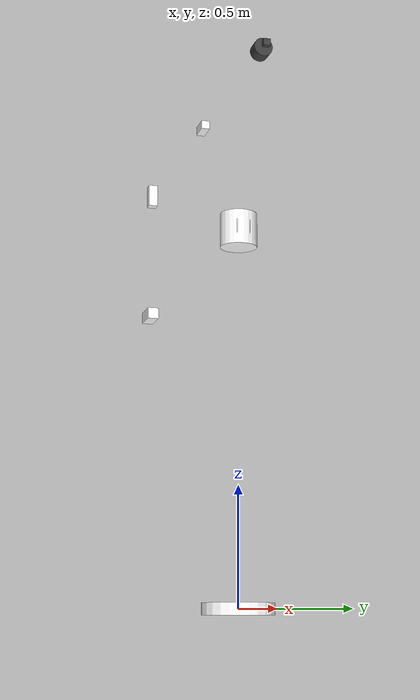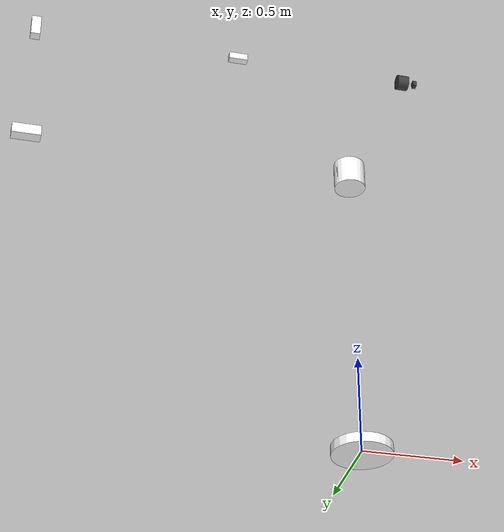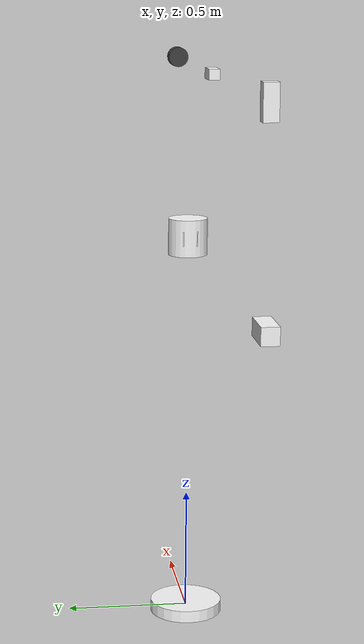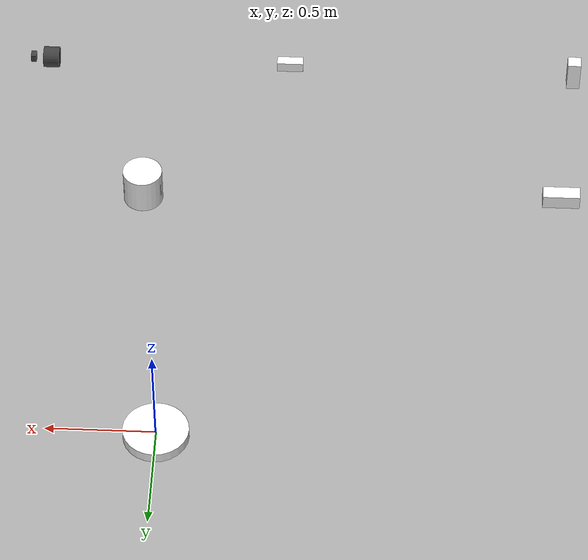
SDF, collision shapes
<sdf version='1.11'>
  <model name='my'>
    <link name='base_link'>
      <inertial>
        <pose>0.0 0.0 0.0 0.0 0.0 0.0</pose>
        <mass>2</mass>
        <inertia>
          <ixx>0.02</ixx>
          <ixy>0</ixy>
          <ixz>0</ixz>
          <iyy>0.02</iyy>
          <iyz>0</iyz>
          <izz>0.02</izz>
        </inertia>
      </inertial>
      <collision name='base_link_collision'>
        <pose>0.0 0.0 0.0 0.0 0.0 0.0</pose>
        <geometry>
          <cylinder>
            <length>0.050000000000000003</length>
            <radius>0.14999999999999999</radius>
          </cylinder>
        </geometry>
      </collision>
      <visual name='base_link_visual'>
        <pose>0.0 0.0 0.0 0.0 0.0 0.0</pose>
        <geometry>
          <mesh>
            <scale>0.01 0.01 0.01</scale>
            <uri>model://my_robot/meshes/base.STL</uri>
          </mesh>
        </geometry>
        <material>
          <diffuse>1 1 1 1</diffuse>
          <ambient>1 1 1 1</ambient>
        </material>
      </visual>
    </link>
    <!-- Fixed joint anchoring base_link to the world frame -->
    <joint name='base_world_fixed' type='fixed'>
      <parent>world</parent>
      <child>base_link</child>
    </joint>

    <joint name='base_to_link0' type='revolute'>
      <pose relative_to='base_link'>0.0 0.0 0.0 0.0 0.0 0.0</pose>
      <parent>base_link</parent>
      <child>link0</child>
      <axis>
        <xyz>0 0 1</xyz>
        <limit>
          <lower>-4</lower>
          <upper>0</upper>
          <effort>100</effort>
          <velocity>1</velocity>
        </limit>
        <dynamics>
          <spring_reference>0</spring_reference>
          <spring_stiffness>0</spring_stiffness>
        </dynamics>
      </axis>
    </joint>
    <link name='link0'>
      <pose relative_to='base_to_link0'>0.0 0.0 0.0 0.0 0.0 0.0</pose>
      <inertial>
        <pose>0.0 0.0 0.8 0.0 0.0 0.0</pose>
        <mass>0.80000000000000004</mass>
        <inertia>
          <ixx>0.0050000000000000001</ixx>
          <ixy>0</ixy>
          <ixz>0</ixz>
          <iyy>0.0050000000000000001</iyy>
          <iyz>0</iyz>
          <izz>0.0030000000000000001</izz>
        </inertia>
      </inertial>
      <collision name='link0_collision'>
        <pose>0.0 0.0 1.6 0.0 0.0 0.0</pose>
        <geometry>
          <cylinder>
            <length>0.14999999999999999</length>
            <radius>0.080000000000000002</radius>
          </cylinder>
        </geometry>
      </collision>
      <visual name='link0_visual'>
        <pose>0.0 0.0 1.6 0.0 0.0 3.1415</pose>
        <geometry>
          <mesh>
            <scale>0.01 0.01 0.01</scale>
            <uri>model://my_robot/meshes/joint1.STL</uri>
          </mesh>
        </geometry>
        <material>
          <diffuse>1 1 1 1</diffuse>
          <ambient>1 1 1 1</ambient>
        </material>
      </visual>
    </link>
    <joint name='link0_to_link1' type='revolute'>
      <pose relative_to='link0'>0.0 0.0 1.6 1.570892653589793 9.265358979305728e-05 -3.141592653589793</pose>
      <parent>link0</parent>
      <child>link1</child>
      <axis>
        <xyz>0 0 1</xyz>
        <limit>
          <lower>0</lower>
          <upper>3.1415000000000002</upper>
          <effort>100</effort>
          <velocity>1</velocity>
        </limit>
        <dynamics>
          <spring_reference>0</spring_reference>
          <spring_stiffness>0</spring_stiffness>
        </dynamics>
      </axis>
    </joint>
    <link name='link1'>
      <pose relative_to='link0_to_link1'>0.0 0.0 0.0 0.0 0.0 0.0</pose>
      <inertial>
        <pose>0.0 0.0 0.0 0.0 0.0 0.0</pose>
        <mass>0.69999999999999996</mass>
        <inertia>
          <ixx>0.0040000000000000001</ixx>
          <ixy>0</ixy>
          <ixz>0</ixz>
          <iyy>0.0040000000000000001</iyy>
          <iyz>0</iyz>
          <izz>0.002</izz>
        </inertia>
      </inertial>
      <collision name='link1_collision'>
        <pose>0.0 0.0 0.0 0.0 0.0 0.0</pose>
        <geometry>
          <box>
            <size>0.14999999999999999 0.059999999999999998 0.059999999999999998</size>
          </box>
        </geometry>
      </collision>
      <visual name='link1_visual'>
        <pose>0.0 0.0 0.0 3.141592653589793 9.265358979305728e-05 -1.570892653589793</pose>
        <geometry>
          <mesh>
            <scale>0.01 0.01 0.01</scale>
            <uri>model://my_robot/meshes/joint2.STL</uri>
          </mesh>
        </geometry>
        <material>
          <diffuse>1 1 1 1</diffuse>
          <ambient>1 1 1 1</ambient>
        </material>
      </visual>
    </link>
    <joint name='link1_to_link2' type='revolute'>
      <pose relative_to='link1'>1.7 0.0 0.0 0.0 0.0 0.0</pose>
      <parent>link1</parent>
      <child>link2</child>
      <axis>
        <xyz>0 0 1</xyz>
        <limit>
          <lower>-3.1415000000000002</lower>
          <upper>0</upper>
          <effort>100</effort>
          <velocity>1</velocity>
        </limit>
        <dynamics>
          <spring_reference>0</spring_reference>
          <spring_stiffness>0</spring_stiffness>
        </dynamics>
      </axis>
    </joint>
    <link name='link2'>
      <pose relative_to='link1_to_link2'>0.0 0.0 0.0 0.0 0.0 0.0</pose>
      <inertial>
        <pose>0.0 0.0 0.0 0.0 0.0 0.0</pose>
        <mass>0.59999999999999998</mass>
        <inertia>
          <ixx>0.0030000000000000001</ixx>
          <ixy>0</ixy>
          <ixz>0</ixz>
          <iyy>0.0030000000000000001</iyy>
          <iyz>0</iyz>
          <izz>0.002</izz>
        </inertia>
      </inertial>
      <collision name='link2_collision'>
        <pose>0.0 0.0 0.0 0.0 0.0 0.0</pose>
        <geometry>
          <box>
            <size>0.14999999999999999 0.059999999999999998 0.059999999999999998</size>
          </box>
        </geometry>
      </collision>
      <visual name='link2_visual'>
        <pose>0.0 0.0 0.0 3.141592653589793 9.265358979305727e-05 3.141592653589793</pose>
        <geometry>
          <mesh>
            <scale>0.01 0.01 0.01</scale>
            <uri>model://my_robot/meshes/joint3.STL</uri>
          </mesh>
        </geometry>
        <material>
          <diffuse>1 1 1 1</diffuse>
          <ambient>1 1 1 1</ambient>
        </material>
      </visual>
    </link>
    <joint name='link2_to_link3' type='revolute'>
      <pose relative_to='link2'>0.0 0.7 0.0 -1.5708 5.551115123125783e-17 1.5708</pose>
      <parent>link2</parent>
      <child>link3</child>
      <axis>
        <xyz>0 0 1</xyz>
        <limit>
          <lower>-3.1415000000000002</lower>
          <upper>0</upper>
          <effort>100</effort>
          <velocity>1</velocity>
        </limit>
        <dynamics>
          <spring_reference>0</spring_reference>
          <spring_stiffness>0</spring_stiffness>
        </dynamics>
      </axis>
    </joint>
    <link name='link3'>
      <pose relative_to='link2_to_link3'>0.0 0.0 0.0 0.0 0.0 0.0</pose>
      <inertial>
        <pose>0.0 0.0 0.0 0.0 0.0 0.0</pose>
        <mass>0.5</mass>
        <inertia>
          <ixx>0.002</ixx>
          <ixy>0</ixy>
          <ixz>0</ixz>
          <iyy>0.002</iyy>
          <iyz>0</iyz>
          <izz>0.001</izz>
        </inertia>
      </inertial>
      <collision name='link3_collision'>
        <pose>0.0 0.0 0.0 0.0 0.0 0.0</pose>
        <geometry>
          <box>
            <size>0.12 0.050000000000000003 0.050000000000000003</size>
          </box>
        </geometry>
      </collision>
      <visual name='link3_visual'>
        <pose>0.0 0.0 0.2 0.0 0.0 -1.5708</pose>
        <geometry>
          <mesh>
            <scale>0.01 0.01 0.01</scale>
            <uri>model://my_robot/meshes/joint4.STL</uri>
          </mesh>
        </geometry>
        <material>
          <diffuse>1 1 1 1</diffuse>
          <ambient>1 1 1 1</ambient>
        </material>
      </visual>
    </link>
    <joint name='link3_to_link4' type='revolute'>
      <pose relative_to='link3'>0.0 0.0 1.1 0.0 -1.5707000000020088 -1.57069999999948</pose>
      <parent>link3</parent>
      <child>link4</child>
      <axis>
        <xyz>0 0 1</xyz>
        <limit>
          <lower>-1.5713999999999999</lower>
          <upper>1.5713999999999999</upper>
          <effort>100</effort>
          <velocity>1</velocity>
        </limit>
        <dynamics>
          <spring_reference>0</spring_reference>
          <spring_stiffness>0</spring_stiffness>
        </dynamics>
      </axis>
    </joint>
    <link name='link4'>
      <pose relative_to='link3_to_link4'>0.0 0.0 0.0 0.0 0.0 0.0</pose>
      <inertial>
        <pose>0.0 0.0 0.0 0.0 0.0 0.0</pose>
        <mass>0.40000000000000002</mass>
        <inertia>
          <ixx>0.0015</ixx>
          <ixy>0</ixy>
          <ixz>0</ixz>
          <iyy>0.0015</iyy>
          <iyz>0</iyz>
          <izz>0.00080000000000000004</izz>
        </inertia>
      </inertial>
      <collision name='link4_collision'>
        <pose>0.0 0.0 0.0 0.0 0.0 0.0</pose>
        <geometry>
          <box>
            <size>0.10000000000000001 0.040000000000000001 0.040000000000000001</size>
          </box>
        </geometry>
      </collision>
      <visual name='link4_visual'>
        <pose>0.0 0.0 0.0 0.0 0.0 -3.14</pose>
        <geometry>
          <mesh>
            <scale>0.01 0.01 0.01</scale>
            <uri>model://my_robot/meshes/joint5.STL</uri>
          </mesh>
        </geometry>
        <material>
          <diffuse>1 1 1 1</diffuse>
          <ambient>1 1 1 1</ambient>
        </material>
      </visual>
    </link>
    <joint name='link4_to_link5' type='revolute'>
      <pose relative_to='link4'>0.9 0.0 0.0 0.0 1.5706999999997038 0.0</pose>
      <parent>link4</parent>
      <child>link5</child>
      <axis>
        <xyz>0 0 1</xyz>
        <limit>
          <lower>0</lower>
          <upper>6</upper>
          <effort>100</effort>
          <velocity>1</velocity>
        </limit>
        <dynamics>
          <spring_reference>0</spring_reference>
          <spring_stiffness>0</spring_stiffness>
        </dynamics>
      </axis>
    </joint>
    <link name='link5'>
      <pose relative_to='link4_to_link5'>0.0 0.0 0.0 0.0 0.0 0.0</pose>
      <inertial>
        <pose>0.0 0.0 0.014 0.0 0.0 0.0</pose>
        <mass>0.34999999999999998</mass>
        <inertia>
          <ixx>0.001438571428571429</ixx>
          <ixy>0</ixy>
          <ixz>0</ixz>
          <iyy>0.001438571428571429</iyy>
          <iyz>0</iyz>
          <izz>0.00051000000000000004</izz>
        </inertia>
      </inertial>
      <collision name='link5_collision'>
        <pose>0.0 0.0 0.03 0.0 0.0 0.0</pose>
        <geometry>
          <cylinder>
            <length>0.059999999999999998</length>
            <radius>0.040000000000000001</radius>
          </cylinder>
        </geometry>
      </collision>
      <collision name='link5_fixed_joint_lump__camera_link_collision_1'>
        <pose>0.0 0.0 0.1 0.0 0.0 0.0</pose>
        <geometry>
          <box>
            <size>0.029999999999999999 0.029999999999999999 0.02</size>
          </box>
        </geometry>
        <surface>
          <contact>
            <ode/>
          </contact>
          <friction>
            <ode/>
          </friction>
        </surface>
      </collision>
      <visual name='link5_fixed_joint_lump__camera_link_visual'>
        <pose>0.0 0.0 0.1 0.0 0.0 0.0</pose>
        <geometry>
          <box>
            <size>0.029999999999999999 0.029999999999999999 0.02</size>
          </box>
        </geometry>
        <material>
          <diffuse>0.25 0.25 0.25 1</diffuse>
          <ambient>0.25 0.25 0.25 1</ambient>
        </material>
      </visual>
      <sensor name='camera_sensor' type='camera'>
        <always_on>true</always_on>
        <update_rate>30</update_rate>
        <topic>camera_sensor</topic>
        <camera>
          <horizontal_fov>1.236</horizontal_fov>
          <image>
            <width>1280</width>
            <height>720</height>
          </image>
          <clip>
            <near>0.05</near>
            <far>100</far>
          </clip>
        </camera>
        <pose>0.0 0.0 0.1 0.0 -1.5707 0.0</pose>
      </sensor>
    </link>
    <!-- Joint state publisher: publishes joint states on gz-transport -->
    <plugin
      filename="gz-sim-joint-state-publisher-system"
      name="gz::sim::systems::JointStatePublisher">
    </plugin>

    <plugin
      filename="libDirectJointPositionPlugin.so"
      name="my::DirectJointPositionPlugin">
      <joint_name>base_to_link0</joint_name>
    </plugin>
    <plugin
      filename="libDirectJointPositionPlugin.so"
      name="my::DirectJointPositionPlugin">
      <joint_name>link0_to_link1</joint_name>
    </plugin>
    <plugin
      filename="libDirectJointPositionPlugin.so"
      name="my::DirectJointPositionPlugin">
      <joint_name>link1_to_link2</joint_name>
    </plugin>
    <plugin
      filename="libDirectJointPositionPlugin.so"
      name="my::DirectJointPositionPlugin">
      <joint_name>link2_to_link3</joint_name>
    </plugin>
    <plugin
      filename="libDirectJointPositionPlugin.so"
      name="my::DirectJointPositionPlugin">
      <joint_name>link3_to_link4</joint_name>
    </plugin>
    <plugin
      filename="libDirectJointPositionPlugin.so"
      name="my::DirectJointPositionPlugin">
      <joint_name>link4_to_link5</joint_name>
    </plugin>
    <frame name='camera_optical_joint' attached_to='camera_link'>
      <pose>0.0 0.0 0.0 -1.5707899999999997 0.0 -1.5707899999999997</pose>
    </frame>
    <frame name='camera_link_optical' attached_to='camera_optical_joint'>
      <pose>0.0 0.0 0.0 0.0 0.0 0.0</pose>
    </frame>
    <frame name='link5_to_camera' attached_to='link5'>
      <pose>0.0 0.0 0.1 0.0 0.0 0.0</pose>
    </frame>
    <frame name='camera_link' attached_to='link5_to_camera'>
      <pose>0.0 0.0 0.0 0.0 0.0 0.0</pose>
    </frame>
  </model>
</sdf>
